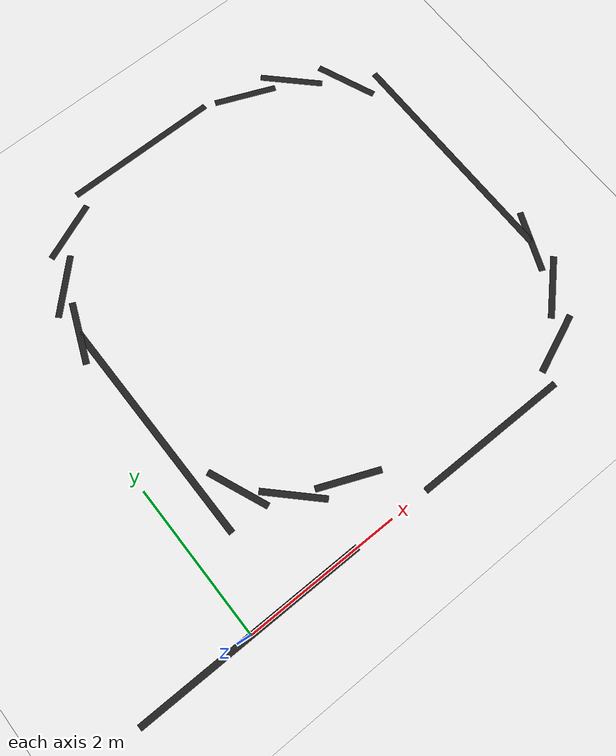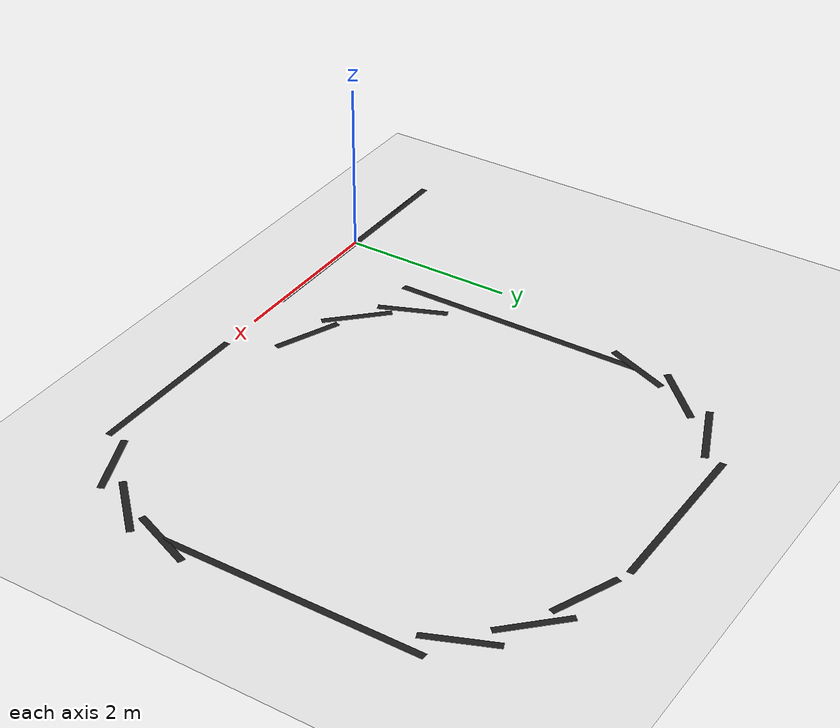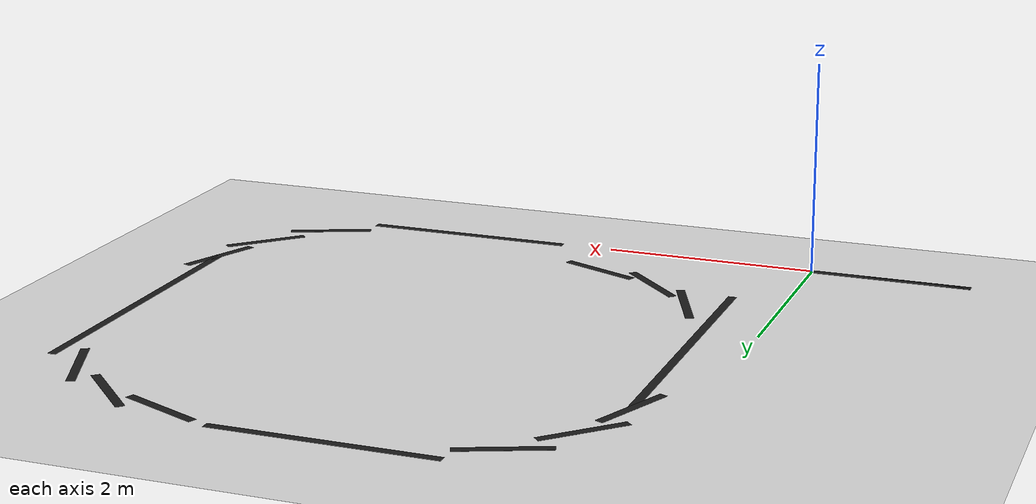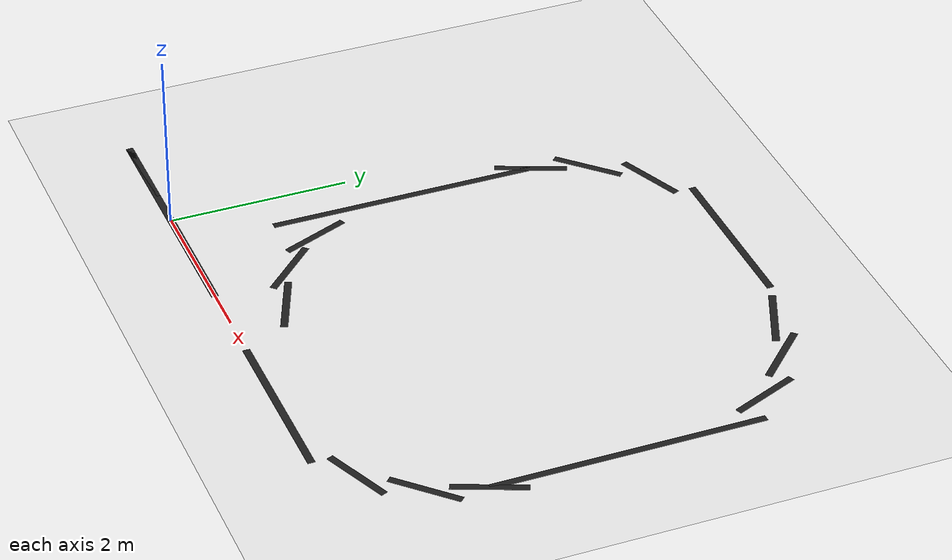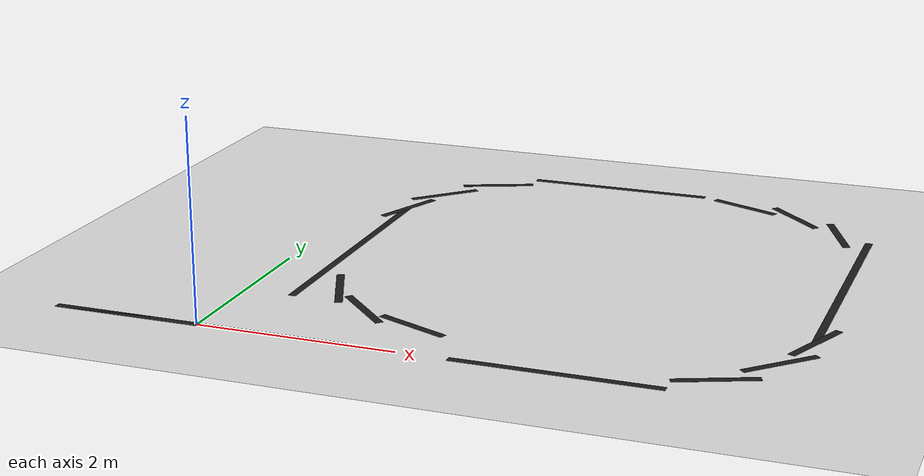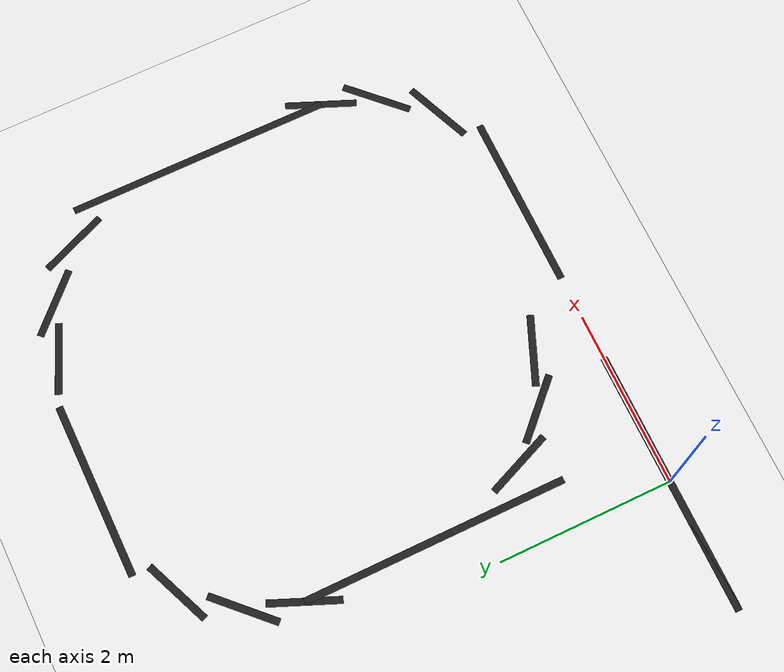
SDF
<?xml version="1.0" ?>
<sdf version="1.6">
  <world name="default">

    <!-- A global light source -->
    <include>
      <uri>model://sun</uri>
    </include>

    <!-- Additional lighting for better visibility -->
    <light name='user_point_light_0' type='point'>
      <pose>0 0 4 0 0 0</pose>
      <diffuse>0.8 0.8 0.8 1</diffuse>
      <specular>0.2 0.2 0.2 1</specular>
      <attenuation>
        <range>20</range>
        <constant>0.5</constant>
        <linear>0.01</linear>
        <quadratic>0.001</quadratic>
      </attenuation>
      <cast_shadows>0</cast_shadows>
    </light>

    <!-- Ground Plane with better texture -->
    <model name="ground_plane">
      <static>true</static>
      <link name="link">
        <collision name="collision">
          <geometry>
            <plane>
              <normal>0 0 1</normal>
              <size>20 20</size>
            </plane>
          </geometry>
          <surface>
            <friction>
              <ode>
                <mu>100</mu>
                <mu2>50</mu2>
              </ode>
            </friction>
          </surface>
        </collision>
        <visual name="visual">
          <cast_shadows>false</cast_shadows>
          <geometry>
            <plane>
              <normal>0 0 1</normal>
              <size>20 20</size>
            </plane>
          </geometry>
          <material>
            <script>
              <uri>file://media/materials/scripts/gazebo.material</uri>
              <name>Gazebo/White</name>
            </script>
          </material>
        </visual>
      </link>
    </model>

    <!-- OVAL TRACK - Creates a smooth oval racing track -->

    <!-- Starting straight line -->
    <model name="line_start">
      <static>true</static>
      <pose>0 0 0.001 0 0 0</pose>
      <link name="link">
        <visual name="visual">
          <geometry>
            <box>
              <size>3.0 0.08 0.001</size>
            </box>
          </geometry>
          <material>
            <script>
              <uri>file://media/materials/scripts/gazebo.material</uri>
              <name>Gazebo/Black</name>
            </script>
          </material>
        </visual>
      </link>
    </model>

    <!-- Right straight section -->
    <model name="line_right_straight">
      <static>true</static>
      <pose>3.5 0 0.001 0 0 0</pose>
      <link name="link">
        <visual name="visual">
          <geometry>
            <box>
              <size>2.0 0.08 0.001</size>
            </box>
          </geometry>
          <material>
            <script>
              <uri>file://media/materials/scripts/gazebo.material</uri>
              <name>Gazebo/Black</name>
            </script>
          </material>
        </visual>
      </link>
    </model>

    <!-- Top right curve - segment 1 -->
    <model name="line_curve_tr1">
      <static>true</static>
      <pose>4.85 0.35 0.001 0 0 0.392699</pose>
      <link name="link">
        <visual name="visual">
          <geometry>
            <box>
              <size>0.8 0.08 0.001</size>
            </box>
          </geometry>
          <material>
            <script>
              <uri>file://media/materials/scripts/gazebo.material</uri>
              <name>Gazebo/Black</name>
            </script>
          </material>
        </visual>
      </link>
    </model>

    <!-- Top right curve - segment 2 -->
    <model name="line_curve_tr2">
      <static>true</static>
      <pose>5.3 0.9 0.001 0 0 0.785398</pose>
      <link name="link">
        <visual name="visual">
          <geometry>
            <box>
              <size>0.8 0.08 0.001</size>
            </box>
          </geometry>
          <material>
            <script>
              <uri>file://media/materials/scripts/gazebo.material</uri>
              <name>Gazebo/Black</name>
            </script>
          </material>
        </visual>
      </link>
    </model>

    <!-- Top right curve - segment 3 -->
    <model name="line_curve_tr3">
      <static>true</static>
      <pose>5.5 1.5 0.001 0 0 1.178097</pose>
      <link name="link">
        <visual name="visual">
          <geometry>
            <box>
              <size>0.8 0.08 0.001</size>
            </box>
          </geometry>
          <material>
            <script>
              <uri>file://media/materials/scripts/gazebo.material</uri>
              <name>Gazebo/Black</name>
            </script>
          </material>
        </visual>
      </link>
    </model>

    <!-- Top straight section -->
    <model name="line_top">
      <static>true</static>
      <pose>5.5 3.0 0.001 0 0 1.5708</pose>
      <link name="link">
        <visual name="visual">
          <geometry>
            <box>
              <size>3.0 0.08 0.001</size>
            </box>
          </geometry>
          <material>
            <script>
              <uri>file://media/materials/scripts/gazebo.material</uri>
              <name>Gazebo/Black</name>
            </script>
          </material>
        </visual>
      </link>
    </model>

    <!-- Top left curve - segment 1 -->
    <model name="line_curve_tl1">
      <static>true</static>
      <pose>5.15 4.65 0.001 0 0 1.963495</pose>
      <link name="link">
        <visual name="visual">
          <geometry>
            <box>
              <size>0.8 0.08 0.001</size>
            </box>
          </geometry>
          <material>
            <script>
              <uri>file://media/materials/scripts/gazebo.material</uri>
              <name>Gazebo/Black</name>
            </script>
          </material>
        </visual>
      </link>
    </model>

    <!-- Top left curve - segment 2 -->
    <model name="line_curve_tl2">
      <static>true</static>
      <pose>4.6 5.1 0.001 0 0 2.356194</pose>
      <link name="link">
        <visual name="visual">
          <geometry>
            <box>
              <size>0.8 0.08 0.001</size>
            </box>
          </geometry>
          <material>
            <script>
              <uri>file://media/materials/scripts/gazebo.material</uri>
              <name>Gazebo/Black</name>
            </script>
          </material>
        </visual>
      </link>
    </model>

    <!-- Top left curve - segment 3 -->
    <model name="line_curve_tl3">
      <static>true</static>
      <pose>4.0 5.3 0.001 0 0 2.748893</pose>
      <link name="link">
        <visual name="visual">
          <geometry>
            <box>
              <size>0.8 0.08 0.001</size>
            </box>
          </geometry>
          <material>
            <script>
              <uri>file://media/materials/scripts/gazebo.material</uri>
              <name>Gazebo/Black</name>
            </script>
          </material>
        </visual>
      </link>
    </model>

    <!-- Left straight section -->
    <model name="line_left_straight">
      <static>true</static>
      <pose>2.5 5.5 0.001 0 0 3.14159</pose>
      <link name="link">
        <visual name="visual">
          <geometry>
            <box>
              <size>2.0 0.08 0.001</size>
            </box>
          </geometry>
          <material>
            <script>
              <uri>file://media/materials/scripts/gazebo.material</uri>
              <name>Gazebo/Black</name>
            </script>
          </material>
        </visual>
      </link>
    </model>

    <!-- Bottom left curve - segment 1 -->
    <model name="line_curve_bl1">
      <static>true</static>
      <pose>1.15 5.15 0.001 0 0 3.534291</pose>
      <link name="link">
        <visual name="visual">
          <geometry>
            <box>
              <size>0.8 0.08 0.001</size>
            </box>
          </geometry>
          <material>
            <script>
              <uri>file://media/materials/scripts/gazebo.material</uri>
              <name>Gazebo/Black</name>
            </script>
          </material>
        </visual>
      </link>
    </model>

    <!-- Bottom left curve - segment 2 -->
    <model name="line_curve_bl2">
      <static>true</static>
      <pose>0.7 4.6 0.001 0 0 3.926991</pose>
      <link name="link">
        <visual name="visual">
          <geometry>
            <box>
              <size>0.8 0.08 0.001</size>
            </box>
          </geometry>
          <material>
            <script>
              <uri>file://media/materials/scripts/gazebo.material</uri>
              <name>Gazebo/Black</name>
            </script>
          </material>
        </visual>
      </link>
    </model>

    <!-- Bottom left curve - segment 3 -->
    <model name="line_curve_bl3">
      <static>true</static>
      <pose>0.5 4.0 0.001 0 0 4.319689</pose>
      <link name="link">
        <visual name="visual">
          <geometry>
            <box>
              <size>0.8 0.08 0.001</size>
            </box>
          </geometry>
          <material>
            <script>
              <uri>file://media/materials/scripts/gazebo.material</uri>
              <name>Gazebo/Black</name>
            </script>
          </material>
        </visual>
      </link>
    </model>

    <!-- Bottom straight section -->
    <model name="line_bottom">
      <static>true</static>
      <pose>0.5 2.5 0.001 0 0 4.71239</pose>
      <link name="link">
        <visual name="visual">
          <geometry>
            <box>
              <size>3.0 0.08 0.001</size>
            </box>
          </geometry>
          <material>
            <script>
              <uri>file://media/materials/scripts/gazebo.material</uri>
              <name>Gazebo/Black</name>
            </script>
          </material>
        </visual>
      </link>
    </model>

    <!-- Bottom right curve - segment 1 -->
    <model name="line_curve_br1">
      <static>true</static>
      <pose>0.85 1.35 0.001 0 0 5.105088</pose>
      <link name="link">
        <visual name="visual">
          <geometry>
            <box>
              <size>0.8 0.08 0.001</size>
            </box>
          </geometry>
          <material>
            <script>
              <uri>file://media/materials/scripts/gazebo.material</uri>
              <name>Gazebo/Black</name>
            </script>
          </material>
        </visual>
      </link>
    </model>

    <!-- Bottom right curve - segment 2 -->
    <model name="line_curve_br2">
      <static>true</static>
      <pose>1.3 0.9 0.001 0 0 5.497787</pose>
      <link name="link">
        <visual name="visual">
          <geometry>
            <box>
              <size>0.8 0.08 0.001</size>
            </box>
          </geometry>
          <material>
            <script>
              <uri>file://media/materials/scripts/gazebo.material</uri>
              <name>Gazebo/Black</name>
            </script>
          </material>
        </visual>
      </link>
    </model>

    <!-- Bottom right curve - segment 3 -->
    <model name="line_curve_br3">
      <static>true</static>
      <pose>1.9 0.65 0.001 0 0 5.890486</pose>
      <link name="link">
        <visual name="visual">
          <geometry>
            <box>
              <size>0.8 0.08 0.001</size>
            </box>
          </geometry>
          <material>
            <script>
              <uri>file://media/materials/scripts/gazebo.material</uri>
              <name>Gazebo/Black</name>
            </script>
          </material>
        </visual>
      </link>
    </model>

    <!-- Connecting piece back to start -->
    <model name="line_connect">
      <static>true</static>
      <pose>-1.0 0 0.001 0 0 0</pose>
      <link name="link">
        <visual name="visual">
          <geometry>
            <box>
              <size>1.0 0.08 0.001</size>
            </box>
          </geometry>
          <material>
            <script>
              <uri>file://media/materials/scripts/gazebo.material</uri>
              <name>Gazebo/Black</name>
            </script>
          </material>
        </visual>
      </link>
    </model>

    <!-- Physics settings for smooth simulation -->
    <physics type="ode">
      <real_time_update_rate>1000.0</real_time_update_rate>
      <max_step_size>0.001</max_step_size>
      <real_time_factor>1</real_time_factor>
      <ode>
        <solver>
          <type>quick</type>
          <iters>50</iters>
          <sor>1.3</sor>
        </solver>
        <constraints>
          <cfm>0.0</cfm>
          <erp>0.2</erp>
          <contact_max_correcting_vel>100.0</contact_max_correcting_vel>
          <contact_surface_layer>0.001</contact_surface_layer>
        </constraints>
      </ode>
    </physics>

    <!-- Scene settings for better visuals -->
    <scene>
      <ambient>0.9 0.9 0.9 1</ambient>
      <background>0.7 0.8 0.9 1</background>
      <shadows>true</shadows>
      <grid>false</grid>
    </scene>

    <!-- GUI settings -->
    <gui fullscreen='0'>
      <camera name='user_camera'>
        <pose>3.0 2.75 8.0 0 1.2 0</pose>
        <view_controller>orbit</view_controller>
      </camera>
    </gui>

  </world>
</sdf>
